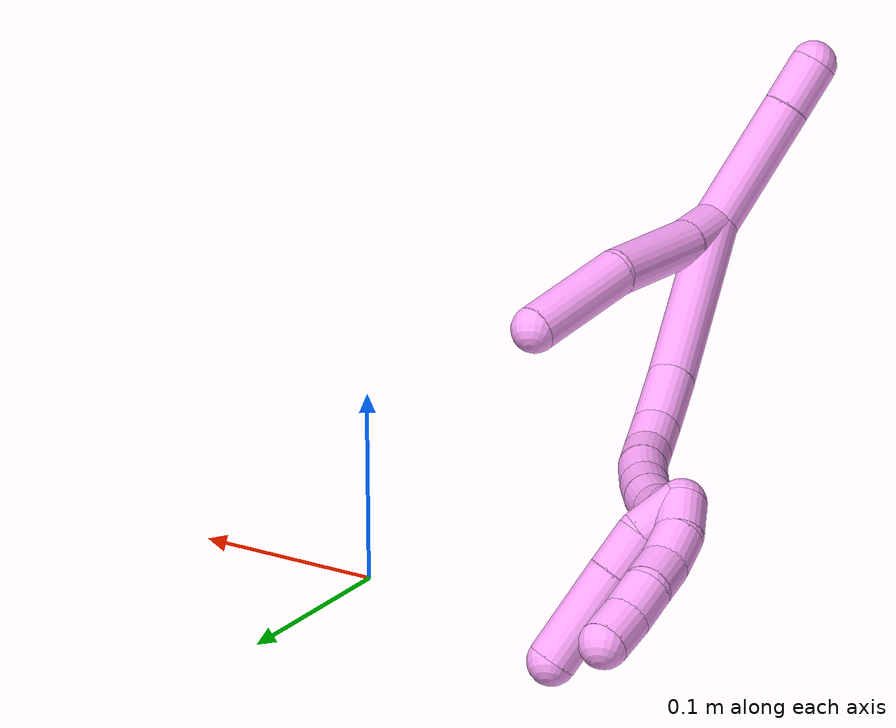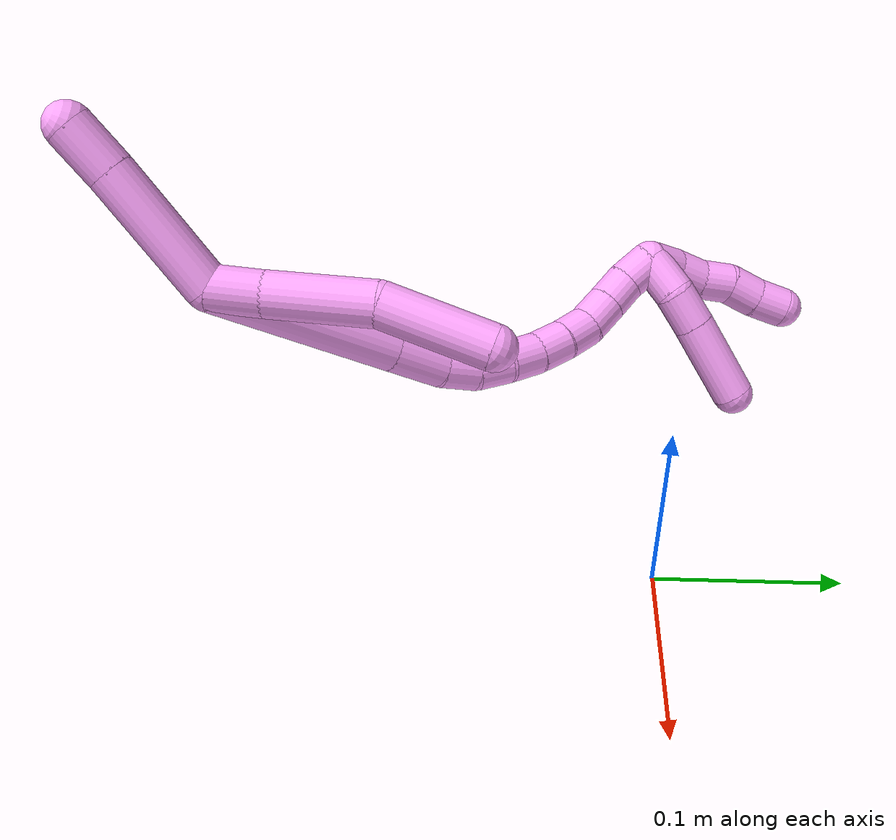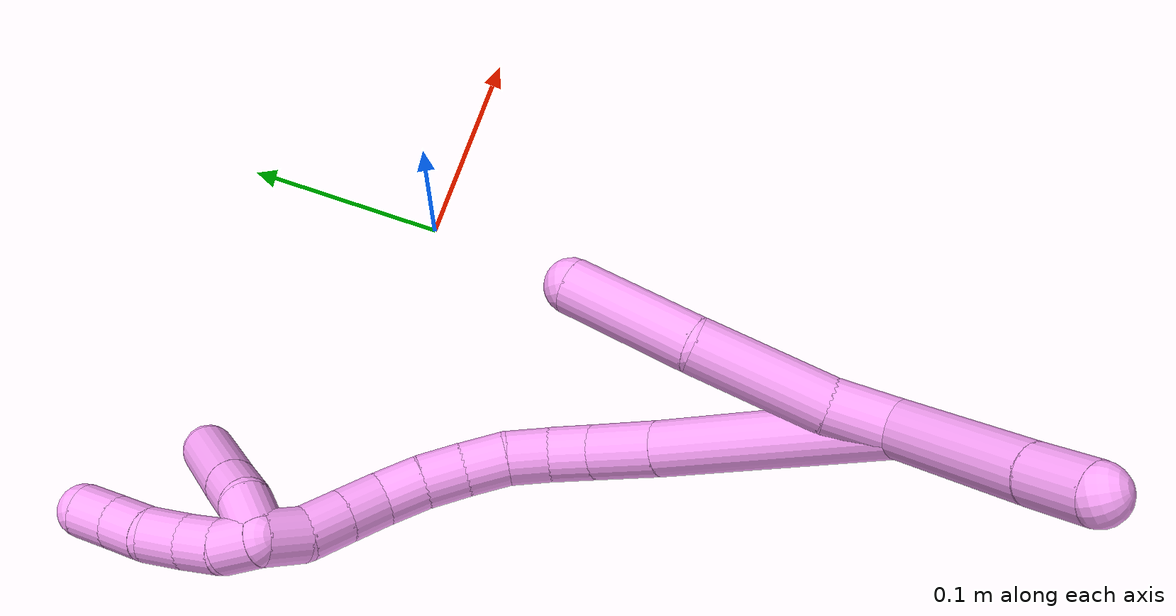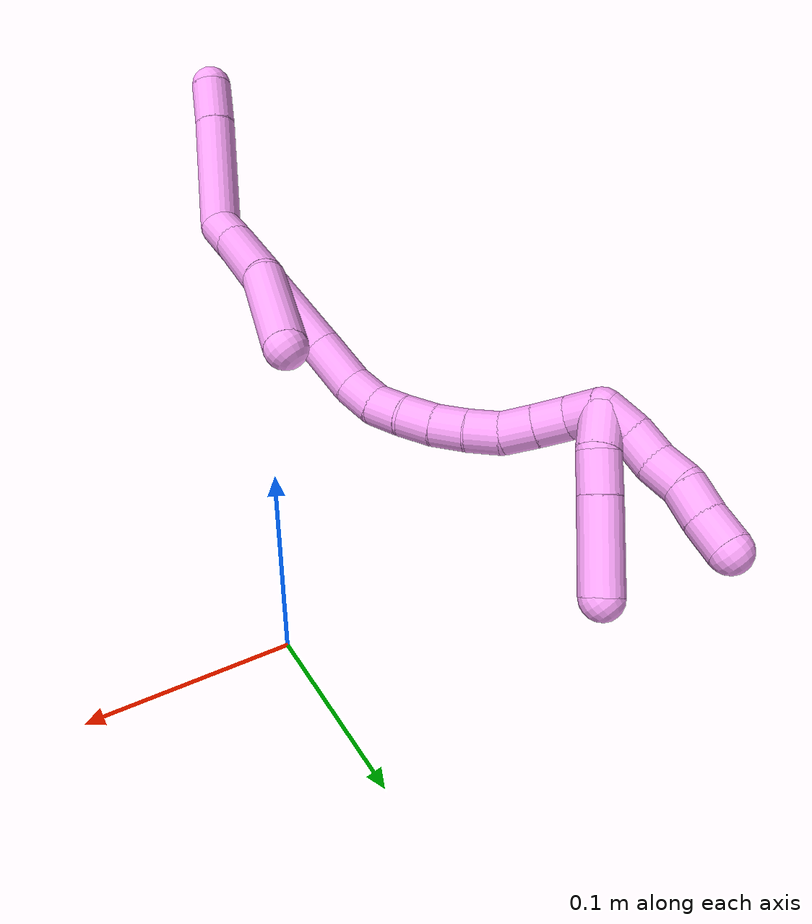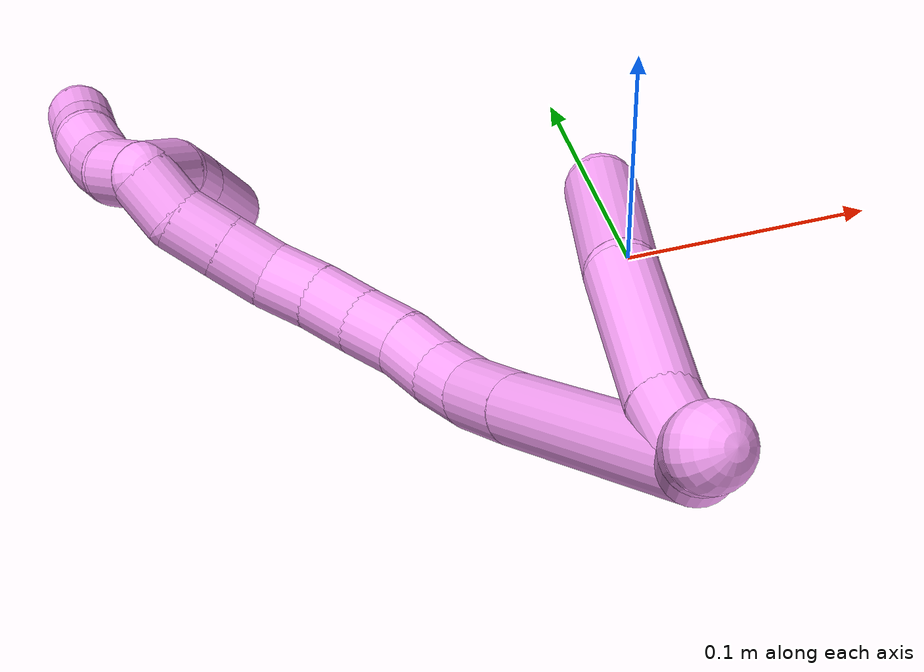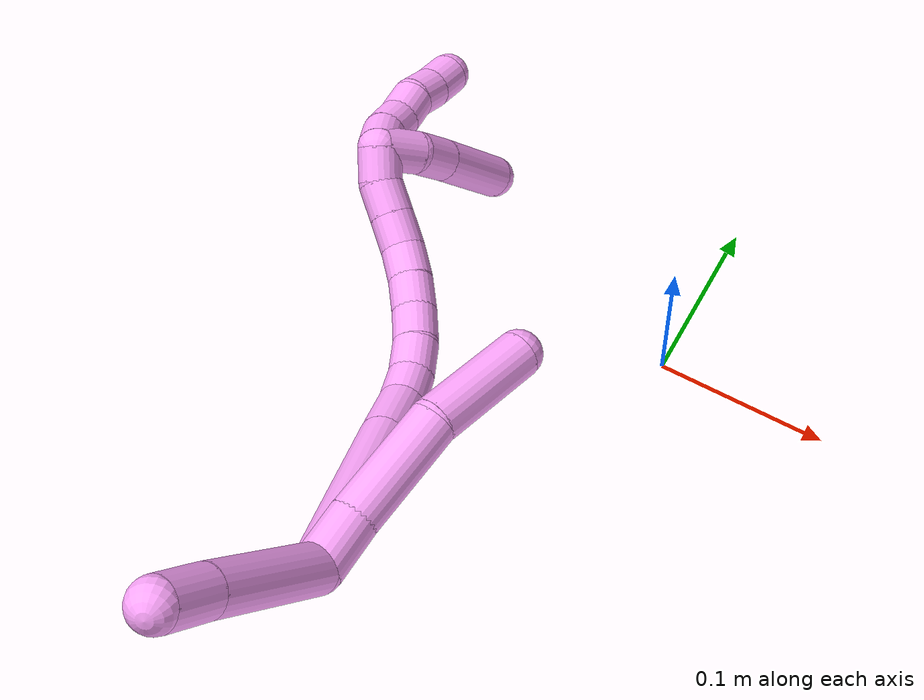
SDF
<sdf version="1.7">
 <world name="default">
  <model name="photoneo_s_sensor">
   <static>1</static>
   <pose>0 0 2 1.57079 1.57079 3.14159</pose>
   <link name="link">
    <inertial><mass>0.1</mass></inertial>
    <sensor name="sensor" type="depth">
     <update_rate>30</update_rate>
     <camera>
      <horizontal_fov>1.22</horizontal_fov>
      <image><width>1920</width><height>1200</height><format>B8G8R8</format></image>
      <clip><near>0.1</near><far>4</far></clip>
      <depth_camera><output>points</output></depth_camera>
     </camera>
     <plugin name="camera_plugin" filename="libgazebo_ros_depth_camera.so">
      <baseline>0.2</baseline>
      <alwaysOn>1</alwaysOn>
      <updateRate>0.0</updateRate>
      <cameraName>camera_ir</cameraName>
      <imageTopicName>/camera/color/image_raw</imageTopicName>
      <cameraInfoTopicName>/camera/color/camera_info</cameraInfoTopicName>
      <depthImageTopicName>/camera/depth/image_raw</depthImageTopicName>
      <depthImageCameraInfoTopicName>/camera/depth/camera_info</depthImageCameraInfoTopicName>
      <pointCloudTopicName>/camera/depth/points</pointCloudTopicName>
      <frameName>fr_optical</frameName>
      <pointCloudCutoff>0.1</pointCloudCutoff>
      <pointCloudCutoffMax>2.0</pointCloudCutoffMax>
      <distortionK1>0</distortionK1>
      <distortionK2>0</distortionK2>
      <distortionK3>0</distortionK3>
      <distortionT1>0</distortionT1>
      <distortionT2>0</distortionT2>
      <CxPrime>0</CxPrime>
      <Cx>0</Cx>
      <Cy>0</Cy>
      <focalLength>0</focalLength>
      <hackBaseline>0</hackBaseline>
     </plugin>
    </sensor>
   </link>
  </model>
  <model name="bin">
   <static>1</static>
   <link name="bottom">
    <collision name="collision-bottom">
     <pose>0 0 -0.01 0 -0 0</pose>
     <geometry><box><size>0.8 0.6 0.02</size></box></geometry>
     <surface>
      <friction><ode><mu>100</mu><mu2>100</mu2></ode></friction>
      <contact><collide_bitmask>65535</collide_bitmask></contact>
     </surface>
    </collision>
   </link>
   <link name="west_wall">
    <collision name="collision-west_wall">
     <pose>-0.41 0 0.1 0 -0 0</pose>
     <geometry><box><size>0.02 0.6 0.2</size></box></geometry>
     <surface>
      <friction><ode><mu>100</mu><mu2>100</mu2></ode></friction>
      <contact><collide_bitmask>65535</collide_bitmask></contact>
     </surface>
    </collision>
   </link>
   <link name="east_wall">
    <collision name="collision-east_wall">
     <pose>0.41 0 0.1 0 -0 0</pose>
     <geometry><box><size>0.02 0.6 0.2</size></box></geometry>
     <surface>
      <friction><ode><mu>100</mu><mu2>100</mu2></ode></friction>
      <contact><collide_bitmask>65535</collide_bitmask></contact>
     </surface>
    </collision>
   </link>
   <link name="south_wall">
    <collision name="collision-south_wall">
     <pose>0 -0.31 0.1 0 -0 0</pose>
     <geometry><box><size>0.8 0.02 0.2</size></box></geometry>
     <surface>
      <friction><ode><mu>100</mu><mu2>100</mu2></ode></friction>
      <contact><collide_bitmask>65535</collide_bitmask></contact>
     </surface>
    </collision>
   </link>
   <link name="north_wall">
    <collision name="collision-north_wall">
     <pose>0 0.31 0.1 0 -0 0</pose>
     <geometry><box><size>0.8 0.02 0.2</size></box></geometry>
     <surface>
      <friction><ode><mu>100</mu><mu2>100</mu2></ode></friction>
      <contact><collide_bitmask>65535</collide_bitmask></contact>
     </surface>
    </collision>
   </link>
  </model>
  <model name="4">
   <static>0</static>
   <link name="4">
    <collision name="collision-cylinder-e_1_2_8">
     <pose>-0.001017 0.009103 -0.011193 -2.45878 -0.070343 0.197408</pose>
     <geometry><cylinder><radius>0.0125</radius><length>0.028926</length></cylinder></geometry>
     <surface>
      <friction><ode><mu>1.16</mu><mu2>1.16</mu2><slip1>0</slip1><slip2>0</slip2></ode></friction>
      <contact><ode><kp>1e+06</kp><kd>1</kd><max_vel>0</max_vel><min_depth>0.001</min_depth></ode></contact>
     </surface>
    </collision>
    <visual name="visual-cylinder-e_1_2_8">
     <pose>-0.001017 0.009103 -0.011193 -2.45878 -0.070343 0.197408</pose>
     <geometry><cylinder><radius>0.0125</radius><length>0.028926</length></cylinder></geometry>
     <material><ambient>1 0.65098 0.996078 1</ambient></material>
    </visual>
    <collision name="collision-cylinder-e_2_8_9">
     <pose>-0.003153 0.039765 -0.043042 -2.33485 -0.037485 0.087788</pose>
     <geometry><cylinder><radius>0.0125</radius><length>0.059758</length></cylinder></geometry>
     <surface>
      <friction><ode><mu>1.16</mu><mu2>1.16</mu2><slip1>0</slip1><slip2>0</slip2></ode></friction>
      <contact><ode><kp>1e+06</kp><kd>1</kd><max_vel>0</max_vel><min_depth>0.001</min_depth></ode></contact>
     </surface>
    </collision>
    <visual name="visual-cylinder-e_2_8_9">
     <pose>-0.003153 0.039765 -0.043042 -2.33485 -0.037485 0.087788</pose>
     <geometry><cylinder><radius>0.0125</radius><length>0.059758</length></cylinder></geometry>
     <material><ambient>1 0.65098 0.996078 1</ambient></material>
    </visual>
    <collision name="collision-cylinder-e_3_9_6">
     <pose>0.001436 0.079363 -0.087822 -2.49948 0.1873 -0.550514</pose>
     <geometry><cylinder><radius>0.0125</radius><length>0.061316</length></cylinder></geometry>
     <surface>
      <friction><ode><mu>1.16</mu><mu2>1.16</mu2><slip1>0</slip1><slip2>0</slip2></ode></friction>
      <contact><ode><kp>1e+06</kp><kd>1</kd><max_vel>0</max_vel><min_depth>0.001</min_depth></ode></contact>
     </surface>
    </collision>
    <visual name="visual-cylinder-e_3_9_6">
     <pose>0.001436 0.079363 -0.087822 -2.49948 0.1873 -0.550514</pose>
     <geometry><cylinder><radius>0.0125</radius><length>0.061316</length></cylinder></geometry>
     <material><ambient>1 0.65098 0.996078 1</ambient></material>
    </visual>
    <collision name="collision-cylinder-e_1_2_10">
     <pose>-0.018663 -0.003059 0.03056 0.099752 -0.546031 -0.027953</pose>
     <geometry><cylinder><radius>0.0125</radius><length>0.071877</length></cylinder></geometry>
     <surface>
      <friction><ode><mu>1.16</mu><mu2>1.16</mu2><slip1>0</slip1><slip2>0</slip2></ode></friction>
      <contact><ode><kp>1e+06</kp><kd>1</kd><max_vel>0</max_vel><min_depth>0.001</min_depth></ode></contact>
     </surface>
    </collision>
    <visual name="visual-cylinder-e_1_2_10">
     <pose>-0.018663 -0.003059 0.03056 0.099752 -0.546031 -0.027953</pose>
     <geometry><cylinder><radius>0.0125</radius><length>0.071877</length></cylinder></geometry>
     <material><ambient>1 0.65098 0.996078 1</ambient></material>
    </visual>
    <collision name="collision-cylinder-e_2_10_5">
     <pose>-0.044129 -0.007566 0.073341 0.11801 -0.505002 -0.03048</pose>
     <geometry><cylinder><radius>0.0125</radius><length>0.028123</length></cylinder></geometry>
     <surface>
      <friction><ode><mu>1.16</mu><mu2>1.16</mu2><slip1>0</slip1><slip2>0</slip2></ode></friction>
      <contact><ode><kp>1e+06</kp><kd>1</kd><max_vel>0</max_vel><min_depth>0.001</min_depth></ode></contact>
     </surface>
    </collision>
    <visual name="visual-cylinder-e_2_10_5">
     <pose>-0.044129 -0.007566 0.073341 0.11801 -0.505002 -0.03048</pose>
     <geometry><cylinder><radius>0.0125</radius><length>0.028123</length></cylinder></geometry>
     <material><ambient>1 0.65098 0.996078 1</ambient></material>
    </visual>
    <collision name="collision-cylinder-e_1_2_11">
     <pose>-0.002641 0.007918 -0.052951 -2.99315 -0.049284 0.640151</pose>
     <geometry><cylinder><radius>0.0125</radius><length>0.107209</length></cylinder></geometry>
     <surface>
      <friction><ode><mu>1.16</mu><mu2>1.16</mu2><slip1>0</slip1><slip2>0</slip2></ode></friction>
      <contact><ode><kp>1e+06</kp><kd>1</kd><max_vel>0</max_vel><min_depth>0.001</min_depth></ode></contact>
     </surface>
    </collision>
    <visual name="visual-cylinder-e_1_2_11">
     <pose>-0.002641 0.007918 -0.052951 -2.99315 -0.049284 0.640151</pose>
     <geometry><cylinder><radius>0.0125</radius><length>0.107209</length></cylinder></geometry>
     <material><ambient>1 0.65098 0.996078 1</ambient></material>
    </visual>
    <collision name="collision-cylinder-e_2_11_12">
     <pose>-0.00595 0.018607 -0.121656 -2.9675 -0.041755 0.46971</pose>
     <geometry><cylinder><radius>0.0125</radius><length>0.032022</length></cylinder></geometry>
     <surface>
      <friction><ode><mu>1.16</mu><mu2>1.16</mu2><slip1>0</slip1><slip2>0</slip2></ode></friction>
      <contact><ode><kp>1e+06</kp><kd>1</kd><max_vel>0</max_vel><min_depth>0.001</min_depth></ode></contact>
     </surface>
    </collision>
    <visual name="visual-cylinder-e_2_11_12">
     <pose>-0.00595 0.018607 -0.121656 -2.9675 -0.041755 0.46971</pose>
     <geometry><cylinder><radius>0.0125</radius><length>0.032022</length></cylinder></geometry>
     <material><ambient>1 0.65098 0.996078 1</ambient></material>
    </visual>
    <collision name="collision-cylinder-e_3_12_13">
     <pose>-0.008799 0.024405 -0.147052 -2.83732 -0.212589 1.21595</pose>
     <geometry><cylinder><radius>0.0125</radius><length>0.020675</length></cylinder></geometry>
     <surface>
      <friction><ode><mu>1.16</mu><mu2>1.16</mu2><slip1>0</slip1><slip2>0</slip2></ode></friction>
      <contact><ode><kp>1e+06</kp><kd>1</kd><max_vel>0</max_vel><min_depth>0.001</min_depth></ode></contact>
     </surface>
    </collision>
    <visual name="visual-cylinder-e_3_12_13">
     <pose>-0.008799 0.024405 -0.147052 -2.83732 -0.212589 1.21595</pose>
     <geometry><cylinder><radius>0.0125</radius><length>0.020675</length></cylinder></geometry>
     <material><ambient>1 0.65098 0.996078 1</ambient></material>
    </visual>
    <collision name="collision-cylinder-e_4_13_14">
     <pose>-0.015579 0.031637 -0.164564 -2.65104 -0.475768 1.53898</pose>
     <geometry><cylinder><radius>0.0125</radius><length>0.020079</length></cylinder></geometry>
     <surface>
      <friction><ode><mu>1.16</mu><mu2>1.16</mu2><slip1>0</slip1><slip2>0</slip2></ode></friction>
      <contact><ode><kp>1e+06</kp><kd>1</kd><max_vel>0</max_vel><min_depth>0.001</min_depth></ode></contact>
     </surface>
    </collision>
    <visual name="visual-cylinder-e_4_13_14">
     <pose>-0.015579 0.031637 -0.164564 -2.65104 -0.475768 1.53898</pose>
     <geometry><cylinder><radius>0.0125</radius><length>0.020079</length></cylinder></geometry>
     <material><ambient>1 0.65098 0.996078 1</ambient></material>
    </visual>
    <collision name="collision-cylinder-e_5_14_15">
     <pose>-0.025626 0.038483 -0.180402 -2.82133 -0.575869 2.14305</pose>
     <geometry><cylinder><radius>0.0125</radius><length>0.020012</length></cylinder></geometry>
     <surface>
      <friction><ode><mu>1.16</mu><mu2>1.16</mu2><slip1>0</slip1><slip2>0</slip2></ode></friction>
      <contact><ode><kp>1e+06</kp><kd>1</kd><max_vel>0</max_vel><min_depth>0.001</min_depth></ode></contact>
     </surface>
    </collision>
    <visual name="visual-cylinder-e_5_14_15">
     <pose>-0.025626 0.038483 -0.180402 -2.82133 -0.575869 2.14305</pose>
     <geometry><cylinder><radius>0.0125</radius><length>0.020012</length></cylinder></geometry>
     <material><ambient>1 0.65098 0.996078 1</ambient></material>
    </visual>
    <collision name="collision-cylinder-e_6_15_16">
     <pose>-0.037504 0.04402 -0.195459 -2.75413 -0.698254 2.15297</pose>
     <geometry><cylinder><radius>0.0125</radius><length>0.020001</length></cylinder></geometry>
     <surface>
      <friction><ode><mu>1.16</mu><mu2>1.16</mu2><slip1>0</slip1><slip2>0</slip2></ode></friction>
      <contact><ode><kp>1e+06</kp><kd>1</kd><max_vel>0</max_vel><min_depth>0.001</min_depth></ode></contact>
     </surface>
    </collision>
    <visual name="visual-cylinder-e_6_15_16">
     <pose>-0.037504 0.04402 -0.195459 -2.75413 -0.698254 2.15297</pose>
     <geometry><cylinder><radius>0.0125</radius><length>0.020001</length></cylinder></geometry>
     <material><ambient>1 0.65098 0.996078 1</ambient></material>
    </visual>
    <collision name="collision-cylinder-e_7_16_17">
     <pose>-0.051046 0.049053 -0.209248 -2.83242 -0.791342 2.42744</pose>
     <geometry><cylinder><radius>0.0125</radius><length>0.020002</length></cylinder></geometry>
     <surface>
      <friction><ode><mu>1.16</mu><mu2>1.16</mu2><slip1>0</slip1><slip2>0</slip2></ode></friction>
      <contact><ode><kp>1e+06</kp><kd>1</kd><max_vel>0</max_vel><min_depth>0.001</min_depth></ode></contact>
     </surface>
    </collision>
    <visual name="visual-cylinder-e_7_16_17">
     <pose>-0.051046 0.049053 -0.209248 -2.83242 -0.791342 2.42744</pose>
     <geometry><cylinder><radius>0.0125</radius><length>0.020002</length></cylinder></geometry>
     <material><ambient>1 0.65098 0.996078 1</ambient></material>
    </visual>
    <collision name="collision-cylinder-e_8_17_18">
     <pose>-0.066761 0.054024 -0.220187 -2.55296 -1.03545 2.16343</pose>
     <geometry><cylinder><radius>0.0125</radius><length>0.02</length></cylinder></geometry>
     <surface>
      <friction><ode><mu>1.16</mu><mu2>1.16</mu2><slip1>0</slip1><slip2>0</slip2></ode></friction>
      <contact><ode><kp>1e+06</kp><kd>1</kd><max_vel>0</max_vel><min_depth>0.001</min_depth></ode></contact>
     </surface>
    </collision>
    <visual name="visual-cylinder-e_8_17_18">
     <pose>-0.066761 0.054024 -0.220187 -2.55296 -1.03545 2.16343</pose>
     <geometry><cylinder><radius>0.0125</radius><length>0.02</length></cylinder></geometry>
     <material><ambient>1 0.65098 0.996078 1</ambient></material>
    </visual>
    <collision name="collision-cylinder-e_9_18_19">
     <pose>-0.084056 0.059732 -0.228449 -2.52057 -1.05389 2.13357</pose>
     <geometry><cylinder><radius>0.0125</radius><length>0.02</length></cylinder></geometry>
     <surface>
      <friction><ode><mu>1.16</mu><mu2>1.16</mu2><slip1>0</slip1><slip2>0</slip2></ode></friction>
      <contact><ode><kp>1e+06</kp><kd>1</kd><max_vel>0</max_vel><min_depth>0.001</min_depth></ode></contact>
     </surface>
    </collision>
    <visual name="visual-cylinder-e_9_18_19">
     <pose>-0.084056 0.059732 -0.228449 -2.52057 -1.05389 2.13357</pose>
     <geometry><cylinder><radius>0.0125</radius><length>0.02</length></cylinder></geometry>
     <material><ambient>1 0.65098 0.996078 1</ambient></material>
    </visual>
    <collision name="collision-cylinder-e_10_19_1">
     <pose>-0.100099 0.068376 -0.236035 -2.12466 -0.8256 1.33204</pose>
     <geometry><cylinder><radius>0.0125</radius><length>0.020001</length></cylinder></geometry>
     <surface>
      <friction><ode><mu>1.16</mu><mu2>1.16</mu2><slip1>0</slip1><slip2>0</slip2></ode></friction>
      <contact><ode><kp>1e+06</kp><kd>1</kd><max_vel>0</max_vel><min_depth>0.001</min_depth></ode></contact>
     </surface>
    </collision>
    <visual name="visual-cylinder-e_10_19_1">
     <pose>-0.100099 0.068376 -0.236035 -2.12466 -0.8256 1.33204</pose>
     <geometry><cylinder><radius>0.0125</radius><length>0.020001</length></cylinder></geometry>
     <material><ambient>1 0.65098 0.996078 1</ambient></material>
    </visual>
    <collision name="collision-cylinder-e_1_1_20">
     <pose>-0.109334 0.075016 -0.249384 -3.05256 -0.189636 2.26551</pose>
     <geometry><cylinder><radius>0.0125</radius><length>0.02</length></cylinder></geometry>
     <surface>
      <friction><ode><mu>1.16</mu><mu2>1.16</mu2><slip1>0</slip1><slip2>0</slip2></ode></friction>
      <contact><ode><kp>1e+06</kp><kd>1</kd><max_vel>0</max_vel><min_depth>0.001</min_depth></ode></contact>
     </surface>
    </collision>
    <visual name="visual-cylinder-e_1_1_20">
     <pose>-0.109334 0.075016 -0.249384 -3.05256 -0.189636 2.26551</pose>
     <geometry><cylinder><radius>0.0125</radius><length>0.02</length></cylinder></geometry>
     <material><ambient>1 0.65098 0.996078 1</ambient></material>
    </visual>
    <collision name="collision-cylinder-e_2_20_21">
     <pose>-0.110961 0.078692 -0.268761 -2.85744 0.025807 -0.179939</pose>
     <geometry><cylinder><radius>0.0125</radius><length>0.02</length></cylinder></geometry>
     <surface>
      <friction><ode><mu>1.16</mu><mu2>1.16</mu2><slip1>0</slip1><slip2>0</slip2></ode></friction>
      <contact><ode><kp>1e+06</kp><kd>1</kd><max_vel>0</max_vel><min_depth>0.001</min_depth></ode></contact>
     </surface>
    </collision>
    <visual name="visual-cylinder-e_2_20_21">
     <pose>-0.110961 0.078692 -0.268761 -2.85744 0.025807 -0.179939</pose>
     <geometry><cylinder><radius>0.0125</radius><length>0.02</length></cylinder></geometry>
     <material><ambient>1 0.65098 0.996078 1</ambient></material>
    </visual>
    <collision name="collision-cylinder-e_3_21_22">
     <pose>-0.111926 0.086269 -0.287058 -2.63974 -0.12256 0.469892</pose>
     <geometry><cylinder><radius>0.0125</radius><length>0.02</length></cylinder></geometry>
     <surface>
      <friction><ode><mu>1.16</mu><mu2>1.16</mu2><slip1>0</slip1><slip2>0</slip2></ode></friction>
      <contact><ode><kp>1e+06</kp><kd>1</kd><max_vel>0</max_vel><min_depth>0.001</min_depth></ode></contact>
     </surface>
    </collision>
    <visual name="visual-cylinder-e_3_21_22">
     <pose>-0.111926 0.086269 -0.287058 -2.63974 -0.12256 0.469892</pose>
     <geometry><cylinder><radius>0.0125</radius><length>0.02</length></cylinder></geometry>
     <material><ambient>1 0.65098 0.996078 1</ambient></material>
    </visual>
    <collision name="collision-cylinder-e_4_22_23">
     <pose>-0.111473 0.094601 -0.304954 -2.77244 0.168296 -0.848665</pose>
     <geometry><cylinder><radius>0.0125</radius><length>0.02</length></cylinder></geometry>
     <surface>
      <friction><ode><mu>1.16</mu><mu2>1.16</mu2><slip1>0</slip1><slip2>0</slip2></ode></friction>
      <contact><ode><kp>1e+06</kp><kd>1</kd><max_vel>0</max_vel><min_depth>0.001</min_depth></ode></contact>
     </surface>
    </collision>
    <visual name="visual-cylinder-e_4_22_23">
     <pose>-0.111473 0.094601 -0.304954 -2.77244 0.168296 -0.848665</pose>
     <geometry><cylinder><radius>0.0125</radius><length>0.02</length></cylinder></geometry>
     <material><ambient>1 0.65098 0.996078 1</ambient></material>
    </visual>
    <collision name="collision-cylinder-e_5_23_4">
     <pose>-0.108965 0.102679 -0.323029 -2.67075 0.083448 -0.344636</pose>
     <geometry><cylinder><radius>0.0125</radius><length>0.02</length></cylinder></geometry>
     <surface>
      <friction><ode><mu>1.16</mu><mu2>1.16</mu2><slip1>0</slip1><slip2>0</slip2></ode></friction>
      <contact><ode><kp>1e+06</kp><kd>1</kd><max_vel>0</max_vel><min_depth>0.001</min_depth></ode></contact>
     </surface>
    </collision>
    <visual name="visual-cylinder-e_5_23_4">
     <pose>-0.108965 0.102679 -0.323029 -2.67075 0.083448 -0.344636</pose>
     <geometry><cylinder><radius>0.0125</radius><length>0.02</length></cylinder></geometry>
     <material><ambient>1 0.65098 0.996078 1</ambient></material>
    </visual>
    <collision name="collision-cylinder-e_1_1_24">
     <pose>-0.099022 0.078539 -0.247609 -2.63952 0.745108 -1.98014</pose>
     <geometry><cylinder><radius>0.0125</radius><length>0.024856</length></cylinder></geometry>
     <surface>
      <friction><ode><mu>1.16</mu><mu2>1.16</mu2><slip1>0</slip1><slip2>0</slip2></ode></friction>
      <contact><ode><kp>1e+06</kp><kd>1</kd><max_vel>0</max_vel><min_depth>0.001</min_depth></ode></contact>
     </surface>
    </collision>
    <visual name="visual-cylinder-e_1_1_24">
     <pose>-0.099022 0.078539 -0.247609 -2.63952 0.745108 -1.98014</pose>
     <geometry><cylinder><radius>0.0125</radius><length>0.024856</length></cylinder></geometry>
     <material><ambient>1 0.65098 0.996078 1</ambient></material>
    </visual>
    <collision name="collision-cylinder-e_2_24_25">
     <pose>-0.083477 0.084113 -0.264893 -3.01527 0.65066 -2.77092</pose>
     <geometry><cylinder><radius>0.0125</radius><length>0.023504</length></cylinder></geometry>
     <surface>
      <friction><ode><mu>1.16</mu><mu2>1.16</mu2><slip1>0</slip1><slip2>0</slip2></ode></friction>
      <contact><ode><kp>1e+06</kp><kd>1</kd><max_vel>0</max_vel><min_depth>0.001</min_depth></ode></contact>
     </surface>
    </collision>
    <visual name="visual-cylinder-e_2_24_25">
     <pose>-0.083477 0.084113 -0.264893 -3.01527 0.65066 -2.77092</pose>
     <geometry><cylinder><radius>0.0125</radius><length>0.023504</length></cylinder></geometry>
     <material><ambient>1 0.65098 0.996078 1</ambient></material>
    </visual>
    <collision name="collision-cylinder-e_3_25_3">
     <pose>-0.060367 0.087182 -0.294352 -3.04819 0.667947 -2.87382</pose>
     <geometry><cylinder><radius>0.0125</radius><length>0.05164</length></cylinder></geometry>
     <surface>
      <friction><ode><mu>1.16</mu><mu2>1.16</mu2><slip1>0</slip1><slip2>0</slip2></ode></friction>
      <contact><ode><kp>1e+06</kp><kd>1</kd><max_vel>0</max_vel><min_depth>0.001</min_depth></ode></contact>
     </surface>
    </collision>
    <visual name="visual-cylinder-e_3_25_3">
     <pose>-0.060367 0.087182 -0.294352 -3.04819 0.667947 -2.87382</pose>
     <geometry><cylinder><radius>0.0125</radius><length>0.05164</length></cylinder></geometry>
     <material><ambient>1 0.65098 0.996078 1</ambient></material>
    </visual>
    <collision name="collision-sphere-3">
     <pose>-0.044374 0.089073 -0.314535 0 -0 0</pose>
     <geometry><sphere><radius>0.0125</radius></sphere></geometry>
     <surface>
      <friction><ode><mu>1.16</mu><mu2>1.16</mu2><slip1>0</slip1><slip2>0</slip2></ode></friction>
      <contact><ode><kp>1e+06</kp><kd>1</kd><max_vel>0</max_vel><min_depth>0.001</min_depth></ode></contact>
     </surface>
    </collision>
    <visual name="visual-sphere-3">
     <pose>-0.044374 0.089073 -0.314535 0 -0 0</pose>
     <geometry><sphere><radius>0.0125</radius></sphere></geometry>
     <material><ambient>1 0.65098 0.996078 1</ambient></material>
    </visual>
    <collision name="collision-sphere-25">
     <pose>-0.076359 0.085292 -0.274169 0 -0 0</pose>
     <geometry><sphere><radius>0.0125</radius></sphere></geometry>
     <surface>
      <friction><ode><mu>1.16</mu><mu2>1.16</mu2><slip1>0</slip1><slip2>0</slip2></ode></friction>
      <contact><ode><kp>1e+06</kp><kd>1</kd><max_vel>0</max_vel><min_depth>0.001</min_depth></ode></contact>
     </surface>
    </collision>
    <visual name="visual-sphere-25">
     <pose>-0.076359 0.085292 -0.274169 0 -0 0</pose>
     <geometry><sphere><radius>0.0125</radius></sphere></geometry>
     <material><ambient>1 0.65098 0.996078 1</ambient></material>
    </visual>
    <collision name="collision-sphere-24">
     <pose>-0.090595 0.082935 -0.255617 0 -0 0</pose>
     <geometry><sphere><radius>0.0125</radius></sphere></geometry>
     <surface>
      <friction><ode><mu>1.16</mu><mu2>1.16</mu2><slip1>0</slip1><slip2>0</slip2></ode></friction>
      <contact><ode><kp>1e+06</kp><kd>1</kd><max_vel>0</max_vel><min_depth>0.001</min_depth></ode></contact>
     </surface>
    </collision>
    <visual name="visual-sphere-24">
     <pose>-0.090595 0.082935 -0.255617 0 -0 0</pose>
     <geometry><sphere><radius>0.0125</radius></sphere></geometry>
     <material><ambient>1 0.65098 0.996078 1</ambient></material>
    </visual>
    <collision name="collision-sphere-4">
     <pose>-0.108131 0.107199 -0.33191 0 -0 0</pose>
     <geometry><sphere><radius>0.0125</radius></sphere></geometry>
     <surface>
      <friction><ode><mu>1.16</mu><mu2>1.16</mu2><slip1>0</slip1><slip2>0</slip2></ode></friction>
      <contact><ode><kp>1e+06</kp><kd>1</kd><max_vel>0</max_vel><min_depth>0.001</min_depth></ode></contact>
     </surface>
    </collision>
    <visual name="visual-sphere-4">
     <pose>-0.108131 0.107199 -0.33191 0 -0 0</pose>
     <geometry><sphere><radius>0.0125</radius></sphere></geometry>
     <material><ambient>1 0.65098 0.996078 1</ambient></material>
    </visual>
    <collision name="collision-sphere-23">
     <pose>-0.109798 0.098158 -0.314149 0 -0 0</pose>
     <geometry><sphere><radius>0.0125</radius></sphere></geometry>
     <surface>
      <friction><ode><mu>1.16</mu><mu2>1.16</mu2><slip1>0</slip1><slip2>0</slip2></ode></friction>
      <contact><ode><kp>1e+06</kp><kd>1</kd><max_vel>0</max_vel><min_depth>0.001</min_depth></ode></contact>
     </surface>
    </collision>
    <visual name="visual-sphere-23">
     <pose>-0.109798 0.098158 -0.314149 0 -0 0</pose>
     <geometry><sphere><radius>0.0125</radius></sphere></geometry>
     <material><ambient>1 0.65098 0.996078 1</ambient></material>
    </visual>
    <collision name="collision-sphere-22">
     <pose>-0.113148 0.091044 -0.295759 0 -0 0</pose>
     <geometry><sphere><radius>0.0125</radius></sphere></geometry>
     <surface>
      <friction><ode><mu>1.16</mu><mu2>1.16</mu2><slip1>0</slip1><slip2>0</slip2></ode></friction>
      <contact><ode><kp>1e+06</kp><kd>1</kd><max_vel>0</max_vel><min_depth>0.001</min_depth></ode></contact>
     </surface>
    </collision>
    <visual name="visual-sphere-22">
     <pose>-0.113148 0.091044 -0.295759 0 -0 0</pose>
     <geometry><sphere><radius>0.0125</radius></sphere></geometry>
     <material><ambient>1 0.65098 0.996078 1</ambient></material>
    </visual>
    <collision name="collision-sphere-21">
     <pose>-0.110703 0.081495 -0.278357 0 -0 0</pose>
     <geometry><sphere><radius>0.0125</radius></sphere></geometry>
     <surface>
      <friction><ode><mu>1.16</mu><mu2>1.16</mu2><slip1>0</slip1><slip2>0</slip2></ode></friction>
      <contact><ode><kp>1e+06</kp><kd>1</kd><max_vel>0</max_vel><min_depth>0.001</min_depth></ode></contact>
     </surface>
    </collision>
    <visual name="visual-sphere-21">
     <pose>-0.110703 0.081495 -0.278357 0 -0 0</pose>
     <geometry><sphere><radius>0.0125</radius></sphere></geometry>
     <material><ambient>1 0.65098 0.996078 1</ambient></material>
    </visual>
    <collision name="collision-sphere-20">
     <pose>-0.111219 0.07589 -0.259166 0 -0 0</pose>
     <geometry><sphere><radius>0.0125</radius></sphere></geometry>
     <surface>
      <friction><ode><mu>1.16</mu><mu2>1.16</mu2><slip1>0</slip1><slip2>0</slip2></ode></friction>
      <contact><ode><kp>1e+06</kp><kd>1</kd><max_vel>0</max_vel><min_depth>0.001</min_depth></ode></contact>
     </surface>
    </collision>
    <visual name="visual-sphere-20">
     <pose>-0.111219 0.07589 -0.259166 0 -0 0</pose>
     <geometry><sphere><radius>0.0125</radius></sphere></geometry>
     <material><ambient>1 0.65098 0.996078 1</ambient></material>
    </visual>
    <collision name="collision-sphere-5">
     <pose>-0.050932 -0.009015 0.085562 0 -0 0</pose>
     <geometry><sphere><radius>0.0125</radius></sphere></geometry>
     <surface>
      <friction><ode><mu>1.16</mu><mu2>1.16</mu2><slip1>0</slip1><slip2>0</slip2></ode></friction>
      <contact><ode><kp>1e+06</kp><kd>1</kd><max_vel>0</max_vel><min_depth>0.001</min_depth></ode></contact>
     </surface>
    </collision>
    <visual name="visual-sphere-5">
     <pose>-0.050932 -0.009015 0.085562 0 -0 0</pose>
     <geometry><sphere><radius>0.0125</radius></sphere></geometry>
     <material><ambient>1 0.65098 0.996078 1</ambient></material>
    </visual>
    <collision name="collision-sphere-10">
     <pose>-0.037326 -0.006117 0.06112 0 -0 0</pose>
     <geometry><sphere><radius>0.0125</radius></sphere></geometry>
     <surface>
      <friction><ode><mu>1.16</mu><mu2>1.16</mu2><slip1>0</slip1><slip2>0</slip2></ode></friction>
      <contact><ode><kp>1e+06</kp><kd>1</kd><max_vel>0</max_vel><min_depth>0.001</min_depth></ode></contact>
     </surface>
    </collision>
    <visual name="visual-sphere-10">
     <pose>-0.037326 -0.006117 0.06112 0 -0 0</pose>
     <geometry><sphere><radius>0.0125</radius></sphere></geometry>
     <material><ambient>1 0.65098 0.996078 1</ambient></material>
    </visual>
    <collision name="collision-sphere-6">
     <pose>0.007145 0.097403 -0.111945 0 -0 0</pose>
     <geometry><sphere><radius>0.0125</radius></sphere></geometry>
     <surface>
      <friction><ode><mu>1.16</mu><mu2>1.16</mu2><slip1>0</slip1><slip2>0</slip2></ode></friction>
      <contact><ode><kp>1e+06</kp><kd>1</kd><max_vel>0</max_vel><min_depth>0.001</min_depth></ode></contact>
     </surface>
    </collision>
    <visual name="visual-sphere-6">
     <pose>0.007145 0.097403 -0.111945 0 -0 0</pose>
     <geometry><sphere><radius>0.0125</radius></sphere></geometry>
     <material><ambient>1 0.65098 0.996078 1</ambient></material>
    </visual>
    <collision name="collision-sphere-9">
     <pose>-0.004273 0.061324 -0.0637 0 -0 0</pose>
     <geometry><sphere><radius>0.0125</radius></sphere></geometry>
     <surface>
      <friction><ode><mu>1.16</mu><mu2>1.16</mu2><slip1>0</slip1><slip2>0</slip2></ode></friction>
      <contact><ode><kp>1e+06</kp><kd>1</kd><max_vel>0</max_vel><min_depth>0.001</min_depth></ode></contact>
     </surface>
    </collision>
    <visual name="visual-sphere-9">
     <pose>-0.004273 0.061324 -0.0637 0 -0 0</pose>
     <geometry><sphere><radius>0.0125</radius></sphere></geometry>
     <material><ambient>1 0.65098 0.996078 1</ambient></material>
    </visual>
    <collision name="collision-sphere-2">
     <geometry><sphere><radius>0.0125</radius></sphere></geometry>
     <surface>
      <friction><ode><mu>1.16</mu><mu2>1.16</mu2><slip1>0</slip1><slip2>0</slip2></ode></friction>
      <contact><ode><kp>1e+06</kp><kd>1</kd><max_vel>0</max_vel><min_depth>0.001</min_depth></ode></contact>
     </surface>
    </collision>
    <visual name="visual-sphere-2">
     <geometry><sphere><radius>0.0125</radius></sphere></geometry>
     <material><ambient>1 0.65098 0.996078 1</ambient></material>
    </visual>
    <collision name="collision-sphere-19">
     <pose>-0.092749 0.062608 -0.232468 0 -0 0</pose>
     <geometry><sphere><radius>0.0125</radius></sphere></geometry>
     <surface>
      <friction><ode><mu>1.16</mu><mu2>1.16</mu2><slip1>0</slip1><slip2>0</slip2></ode></friction>
      <contact><ode><kp>1e+06</kp><kd>1</kd><max_vel>0</max_vel><min_depth>0.001</min_depth></ode></contact>
     </surface>
    </collision>
    <visual name="visual-sphere-19">
     <pose>-0.092749 0.062608 -0.232468 0 -0 0</pose>
     <geometry><sphere><radius>0.0125</radius></sphere></geometry>
     <material><ambient>1 0.65098 0.996078 1</ambient></material>
    </visual>
    <collision name="collision-sphere-8">
     <pose>-0.002033 0.018207 -0.022385 0 -0 0</pose>
     <geometry><sphere><radius>0.0125</radius></sphere></geometry>
     <surface>
      <friction><ode><mu>1.16</mu><mu2>1.16</mu2><slip1>0</slip1><slip2>0</slip2></ode></friction>
      <contact><ode><kp>1e+06</kp><kd>1</kd><max_vel>0</max_vel><min_depth>0.001</min_depth></ode></contact>
     </surface>
    </collision>
    <visual name="visual-sphere-8">
     <pose>-0.002033 0.018207 -0.022385 0 -0 0</pose>
     <geometry><sphere><radius>0.0125</radius></sphere></geometry>
     <material><ambient>1 0.65098 0.996078 1</ambient></material>
    </visual>
    <collision name="collision-sphere-11">
     <pose>-0.005282 0.015836 -0.105901 0 -0 0</pose>
     <geometry><sphere><radius>0.0125</radius></sphere></geometry>
     <surface>
      <friction><ode><mu>1.16</mu><mu2>1.16</mu2><slip1>0</slip1><slip2>0</slip2></ode></friction>
      <contact><ode><kp>1e+06</kp><kd>1</kd><max_vel>0</max_vel><min_depth>0.001</min_depth></ode></contact>
     </surface>
    </collision>
    <visual name="visual-sphere-11">
     <pose>-0.005282 0.015836 -0.105901 0 -0 0</pose>
     <geometry><sphere><radius>0.0125</radius></sphere></geometry>
     <material><ambient>1 0.65098 0.996078 1</ambient></material>
    </visual>
    <collision name="collision-sphere-12">
     <pose>-0.006618 0.021378 -0.137411 0 -0 0</pose>
     <geometry><sphere><radius>0.0125</radius></sphere></geometry>
     <surface>
      <friction><ode><mu>1.16</mu><mu2>1.16</mu2><slip1>0</slip1><slip2>0</slip2></ode></friction>
      <contact><ode><kp>1e+06</kp><kd>1</kd><max_vel>0</max_vel><min_depth>0.001</min_depth></ode></contact>
     </surface>
    </collision>
    <visual name="visual-sphere-12">
     <pose>-0.006618 0.021378 -0.137411 0 -0 0</pose>
     <geometry><sphere><radius>0.0125</radius></sphere></geometry>
     <material><ambient>1 0.65098 0.996078 1</ambient></material>
    </visual>
    <collision name="collision-sphere-13">
     <pose>-0.01098 0.027433 -0.156692 0 -0 0</pose>
     <geometry><sphere><radius>0.0125</radius></sphere></geometry>
     <surface>
      <friction><ode><mu>1.16</mu><mu2>1.16</mu2><slip1>0</slip1><slip2>0</slip2></ode></friction>
      <contact><ode><kp>1e+06</kp><kd>1</kd><max_vel>0</max_vel><min_depth>0.001</min_depth></ode></contact>
     </surface>
    </collision>
    <visual name="visual-sphere-13">
     <pose>-0.01098 0.027433 -0.156692 0 -0 0</pose>
     <geometry><sphere><radius>0.0125</radius></sphere></geometry>
     <material><ambient>1 0.65098 0.996078 1</ambient></material>
    </visual>
    <collision name="collision-sphere-14">
     <pose>-0.020177 0.035842 -0.172436 0 -0 0</pose>
     <geometry><sphere><radius>0.0125</radius></sphere></geometry>
     <surface>
      <friction><ode><mu>1.16</mu><mu2>1.16</mu2><slip1>0</slip1><slip2>0</slip2></ode></friction>
      <contact><ode><kp>1e+06</kp><kd>1</kd><max_vel>0</max_vel><min_depth>0.001</min_depth></ode></contact>
     </surface>
    </collision>
    <visual name="visual-sphere-14">
     <pose>-0.020177 0.035842 -0.172436 0 -0 0</pose>
     <geometry><sphere><radius>0.0125</radius></sphere></geometry>
     <material><ambient>1 0.65098 0.996078 1</ambient></material>
    </visual>
    <collision name="collision-sphere-15">
     <pose>-0.031074 0.041125 -0.188367 0 -0 0</pose>
     <geometry><sphere><radius>0.0125</radius></sphere></geometry>
     <surface>
      <friction><ode><mu>1.16</mu><mu2>1.16</mu2><slip1>0</slip1><slip2>0</slip2></ode></friction>
      <contact><ode><kp>1e+06</kp><kd>1</kd><max_vel>0</max_vel><min_depth>0.001</min_depth></ode></contact>
     </surface>
    </collision>
    <visual name="visual-sphere-15">
     <pose>-0.031074 0.041125 -0.188367 0 -0 0</pose>
     <geometry><sphere><radius>0.0125</radius></sphere></geometry>
     <material><ambient>1 0.65098 0.996078 1</ambient></material>
    </visual>
    <collision name="collision-sphere-16">
     <pose>-0.043933 0.046914 -0.202551 0 -0 0</pose>
     <geometry><sphere><radius>0.0125</radius></sphere></geometry>
     <surface>
      <friction><ode><mu>1.16</mu><mu2>1.16</mu2><slip1>0</slip1><slip2>0</slip2></ode></friction>
      <contact><ode><kp>1e+06</kp><kd>1</kd><max_vel>0</max_vel><min_depth>0.001</min_depth></ode></contact>
     </surface>
    </collision>
    <visual name="visual-sphere-16">
     <pose>-0.043933 0.046914 -0.202551 0 -0 0</pose>
     <geometry><sphere><radius>0.0125</radius></sphere></geometry>
     <material><ambient>1 0.65098 0.996078 1</ambient></material>
    </visual>
    <collision name="collision-sphere-17">
     <pose>-0.05816 0.051192 -0.215944 0 -0 0</pose>
     <geometry><sphere><radius>0.0125</radius></sphere></geometry>
     <surface>
      <friction><ode><mu>1.16</mu><mu2>1.16</mu2><slip1>0</slip1><slip2>0</slip2></ode></friction>
      <contact><ode><kp>1e+06</kp><kd>1</kd><max_vel>0</max_vel><min_depth>0.001</min_depth></ode></contact>
     </surface>
    </collision>
    <visual name="visual-sphere-17">
     <pose>-0.05816 0.051192 -0.215944 0 -0 0</pose>
     <geometry><sphere><radius>0.0125</radius></sphere></geometry>
     <material><ambient>1 0.65098 0.996078 1</ambient></material>
    </visual>
    <collision name="collision-sphere-18">
     <pose>-0.075362 0.056857 -0.22443 0 -0 0</pose>
     <geometry><sphere><radius>0.0125</radius></sphere></geometry>
     <surface>
      <friction><ode><mu>1.16</mu><mu2>1.16</mu2><slip1>0</slip1><slip2>0</slip2></ode></friction>
      <contact><ode><kp>1e+06</kp><kd>1</kd><max_vel>0</max_vel><min_depth>0.001</min_depth></ode></contact>
     </surface>
    </collision>
    <visual name="visual-sphere-18">
     <pose>-0.075362 0.056857 -0.22443 0 -0 0</pose>
     <geometry><sphere><radius>0.0125</radius></sphere></geometry>
     <material><ambient>1 0.65098 0.996078 1</ambient></material>
    </visual>
    <collision name="collision-sphere-1">
     <pose>-0.107449 0.074143 -0.239602 0 -0 0</pose>
     <geometry><sphere><radius>0.0125</radius></sphere></geometry>
     <surface>
      <friction><ode><mu>1.16</mu><mu2>1.16</mu2><slip1>0</slip1><slip2>0</slip2></ode></friction>
      <contact><ode><kp>1e+06</kp><kd>1</kd><max_vel>0</max_vel><min_depth>0.001</min_depth></ode></contact>
     </surface>
    </collision>
    <visual name="visual-sphere-1">
     <pose>-0.107449 0.074143 -0.239602 0 -0 0</pose>
     <geometry><sphere><radius>0.0125</radius></sphere></geometry>
     <material><ambient>1 0.65098 0.996078 1</ambient></material>
    </visual>
    <inertial>
     <pose>-0.039436 0.044145 -0.135443 0 -0 0</pose>
     <mass>0.75</mass>
     <inertia>
      <ixx>0.000203</ixx>
      <ixy>0</ixy>
      <ixz>0</ixz>
      <iyy>1.3e-05</iyy>
      <iyz>0</iyz>
      <izz>-6.7e-05</izz>
     </inertia>
    </inertial>
   </link>
   <pose>-0.065596 -0.232783 0.135354 0.738531 0.550825 -0.160675</pose>
  </model>
 </world>
</sdf>
